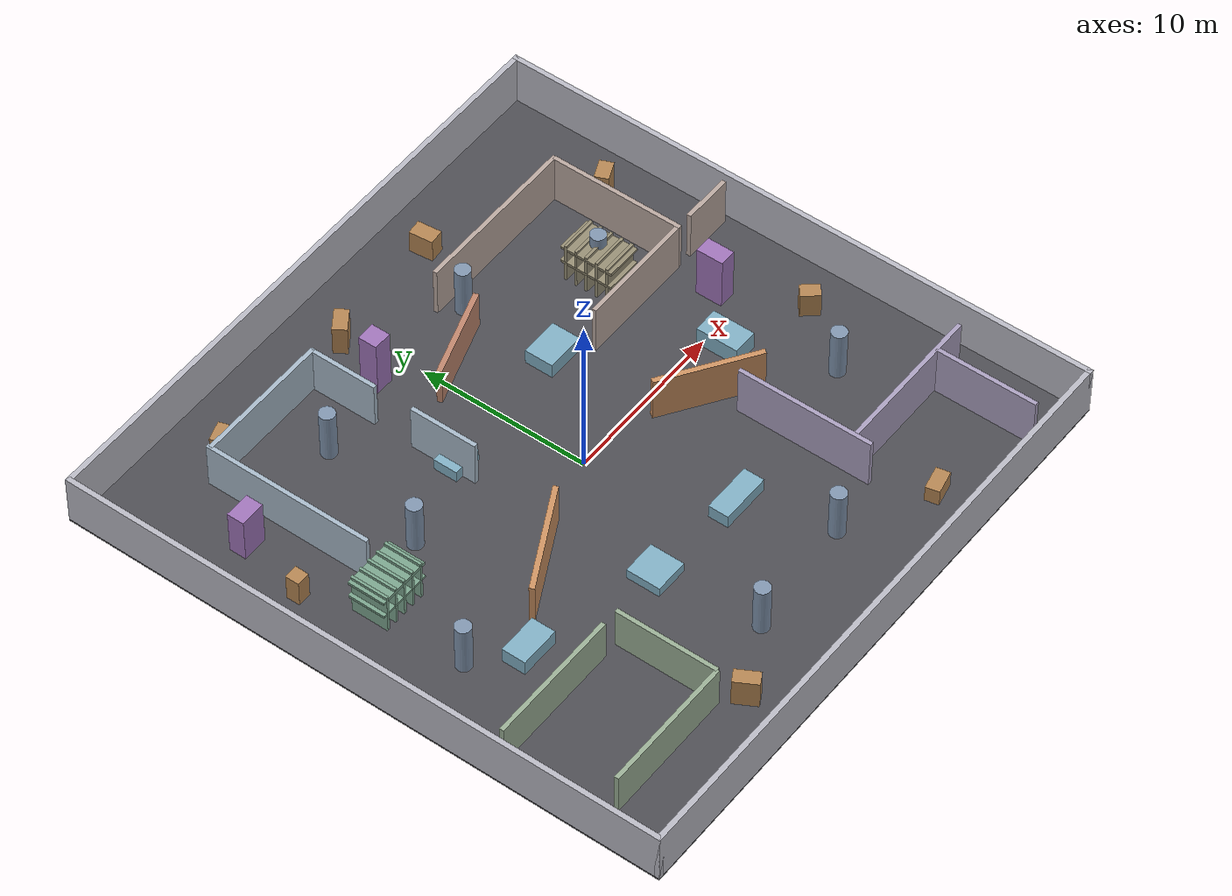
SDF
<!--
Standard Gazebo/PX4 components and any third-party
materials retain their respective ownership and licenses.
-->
<?xml version="1.0" ?>
<sdf version="1.10">
  <world name="m10_large_world">

    <physics type="ode">
      <max_step_size>0.0040000000000000001</max_step_size>
      <real_time_factor>1</real_time_factor>
      <real_time_update_rate>250</real_time_update_rate>
    </physics>
    <gravity>0 0 -9.8000000000000007</gravity>
    <magnetic_field>6.0000000000000002e-06 2.3e-05 -4.1999999999999998e-05</magnetic_field>
    <atmosphere type="adiabatic" />

    <scene>
      <grid>false</grid>
      <ambient>0.400000006 0.400000006 0.400000006 1</ambient>
      <background>0.699999988 0.699999988 0.699999988 1</background>
      <shadows>true</shadows>
    </scene>

    <spherical_coordinates>
      <surface_model>EARTH_WGS84</surface_model>
      <world_frame_orientation>ENU</world_frame_orientation>
      <latitude_deg>47.397971057728974</latitude_deg>
      <longitude_deg>8.5461637398001464</longitude_deg>
      <elevation>0</elevation>
      <heading_deg>0</heading_deg>
    </spherical_coordinates>

    <light name="sun" type="directional">
      <pose>0 0 20 0 0 0</pose>
      <cast_shadows>true</cast_shadows>
      <intensity>1.0</intensity>
      <direction>-0.5 0.3 -1</direction>
      <diffuse>0.9 0.9 0.9 1</diffuse>
      <specular>0.2 0.2 0.2 1</specular>
    </light>

    <model name="floor">
      <static>true</static>
      <pose>0 0 -0.05 0 0 0.0</pose>
      <link name="link">
        <collision name="collision">
          <geometry>
            <box>
              <size>36 36 0.1</size>
            </box>
          </geometry>
        </collision>

        <visual name="visual">
          <geometry>
            <box>
              <size>36 36 0.1</size>
            </box>
          </geometry>
          <material>
            <ambient>0.3 0.3 0.32 1.0</ambient>
            <diffuse>0.3 0.3 0.32 1.0</diffuse>
          </material>
        </visual>
      </link>
    </model>

    <model name="wall_north">
      <static>true</static>
      <pose>0 17.85 1.5 0 0 0.0</pose>
      <link name="link">
        <collision name="collision">
          <geometry>
            <box>
              <size>36 0.3 3.0</size>
            </box>
          </geometry>
        </collision>

        <visual name="visual">
          <geometry>
            <box>
              <size>36 0.3 3.0</size>
            </box>
          </geometry>
          <material>
            <ambient>0.72 0.72 0.76 1.0</ambient>
            <diffuse>0.72 0.72 0.76 1.0</diffuse>
          </material>
        </visual>
      </link>
    </model>

    <model name="wall_south">
      <static>true</static>
      <pose>0 -17.85 1.5 0 0 0.0</pose>
      <link name="link">
        <collision name="collision">
          <geometry>
            <box>
              <size>36 0.3 3.0</size>
            </box>
          </geometry>
        </collision>

        <visual name="visual">
          <geometry>
            <box>
              <size>36 0.3 3.0</size>
            </box>
          </geometry>
          <material>
            <ambient>0.72 0.72 0.76 1.0</ambient>
            <diffuse>0.72 0.72 0.76 1.0</diffuse>
          </material>
        </visual>
      </link>
    </model>

    <model name="wall_east">
      <static>true</static>
      <pose>17.85 0 1.5 0 0 0.0</pose>
      <link name="link">
        <collision name="collision">
          <geometry>
            <box>
              <size>0.3 36 3.0</size>
            </box>
          </geometry>
        </collision>

        <visual name="visual">
          <geometry>
            <box>
              <size>0.3 36 3.0</size>
            </box>
          </geometry>
          <material>
            <ambient>0.72 0.72 0.76 1.0</ambient>
            <diffuse>0.72 0.72 0.76 1.0</diffuse>
          </material>
        </visual>
      </link>
    </model>

    <model name="wall_west">
      <static>true</static>
      <pose>-17.85 0 1.5 0 0 0.0</pose>
      <link name="link">
        <collision name="collision">
          <geometry>
            <box>
              <size>0.3 36 3.0</size>
            </box>
          </geometry>
        </collision>

        <visual name="visual">
          <geometry>
            <box>
              <size>0.3 36 3.0</size>
            </box>
          </geometry>
          <material>
            <ambient>0.72 0.72 0.76 1.0</ambient>
            <diffuse>0.72 0.72 0.76 1.0</diffuse>
          </material>
        </visual>
      </link>
    </model>

    <model name="nw_room_w1">
      <static>true</static>
      <pose>-12.0 9.0 1.4 0 0 0.0</pose>
      <link name="link">
        <collision name="collision">
          <geometry>
            <box>
              <size>0.25 10.0 2.8</size>
            </box>
          </geometry>
        </collision>

        <visual name="visual">
          <geometry>
            <box>
              <size>0.25 10.0 2.8</size>
            </box>
          </geometry>
          <material>
            <ambient>0.65 0.72 0.78 1.0</ambient>
            <diffuse>0.65 0.72 0.78 1.0</diffuse>
          </material>
        </visual>
      </link>
    </model>

    <model name="nw_room_w2">
      <static>true</static>
      <pose>-8.0 13.8 1.4 0 0 0.0</pose>
      <link name="link">
        <collision name="collision">
          <geometry>
            <box>
              <size>8.0 0.25 2.8</size>
            </box>
          </geometry>
        </collision>

        <visual name="visual">
          <geometry>
            <box>
              <size>8.0 0.25 2.8</size>
            </box>
          </geometry>
          <material>
            <ambient>0.65 0.72 0.78 1.0</ambient>
            <diffuse>0.65 0.72 0.78 1.0</diffuse>
          </material>
        </visual>
      </link>
    </model>

    <model name="nw_room_w3a">
      <static>true</static>
      <pose>-4.1 11.8 1.4 0 0 0.0</pose>
      <link name="link">
        <collision name="collision">
          <geometry>
            <box>
              <size>0.25 4.0 2.8</size>
            </box>
          </geometry>
        </collision>

        <visual name="visual">
          <geometry>
            <box>
              <size>0.25 4.0 2.8</size>
            </box>
          </geometry>
          <material>
            <ambient>0.65 0.72 0.78 1.0</ambient>
            <diffuse>0.65 0.72 0.78 1.0</diffuse>
          </material>
        </visual>
      </link>
    </model>

    <model name="nw_room_w3b">
      <static>true</static>
      <pose>-4.1 5.5 1.4 0 0 0.0</pose>
      <link name="link">
        <collision name="collision">
          <geometry>
            <box>
              <size>0.25 4.0 2.8</size>
            </box>
          </geometry>
        </collision>

        <visual name="visual">
          <geometry>
            <box>
              <size>0.25 4.0 2.8</size>
            </box>
          </geometry>
          <material>
            <ambient>0.65 0.72 0.78 1.0</ambient>
            <diffuse>0.65 0.72 0.78 1.0</diffuse>
          </material>
        </visual>
      </link>
    </model>

    <model name="ne_wall_1">
      <static>true</static>
      <pose>8.5 12.0 1.5 0 0 0.0</pose>
      <link name="link">
        <collision name="collision">
          <geometry>
            <box>
              <size>10.0 0.25 3.0</size>
            </box>
          </geometry>
        </collision>

        <visual name="visual">
          <geometry>
            <box>
              <size>10.0 0.25 3.0</size>
            </box>
          </geometry>
          <material>
            <ambient>0.72 0.65 0.62 1.0</ambient>
            <diffuse>0.72 0.65 0.62 1.0</diffuse>
          </material>
        </visual>
      </link>
    </model>

    <model name="ne_wall_2">
      <static>true</static>
      <pose>13.4 8.0 1.5 0 0 0.0</pose>
      <link name="link">
        <collision name="collision">
          <geometry>
            <box>
              <size>0.25 8.0 3.0</size>
            </box>
          </geometry>
        </collision>

        <visual name="visual">
          <geometry>
            <box>
              <size>0.25 8.0 3.0</size>
            </box>
          </geometry>
          <material>
            <ambient>0.72 0.65 0.62 1.0</ambient>
            <diffuse>0.72 0.65 0.62 1.0</diffuse>
          </material>
        </visual>
      </link>
    </model>

    <model name="ne_wall_3a">
      <static>true</static>
      <pose>9.8 4.1 1.5 0 0 0.0</pose>
      <link name="link">
        <collision name="collision">
          <geometry>
            <box>
              <size>7.0 0.25 3.0</size>
            </box>
          </geometry>
        </collision>

        <visual name="visual">
          <geometry>
            <box>
              <size>7.0 0.25 3.0</size>
            </box>
          </geometry>
          <material>
            <ambient>0.72 0.65 0.62 1.0</ambient>
            <diffuse>0.72 0.65 0.62 1.0</diffuse>
          </material>
        </visual>
      </link>
    </model>

    <model name="ne_wall_3b">
      <static>true</static>
      <pose>15.8 4.1 1.5 0 0 0.0</pose>
      <link name="link">
        <collision name="collision">
          <geometry>
            <box>
              <size>3.0 0.25 3.0</size>
            </box>
          </geometry>
        </collision>

        <visual name="visual">
          <geometry>
            <box>
              <size>3.0 0.25 3.0</size>
            </box>
          </geometry>
          <material>
            <ambient>0.72 0.65 0.62 1.0</ambient>
            <diffuse>0.72 0.65 0.62 1.0</diffuse>
          </material>
        </visual>
      </link>
    </model>

    <model name="sw_corridor_1">
      <static>true</static>
      <pose>-13.0 -8.0 1.25 0 0 0.0</pose>
      <link name="link">
        <collision name="collision">
          <geometry>
            <box>
              <size>8.0 0.25 2.5</size>
            </box>
          </geometry>
        </collision>

        <visual name="visual">
          <geometry>
            <box>
              <size>8.0 0.25 2.5</size>
            </box>
          </geometry>
          <material>
            <ambient>0.6 0.68 0.58 1.0</ambient>
            <diffuse>0.6 0.68 0.58 1.0</diffuse>
          </material>
        </visual>
      </link>
    </model>

    <model name="sw_corridor_2">
      <static>true</static>
      <pose>-8.0 -11.0 1.25 0 0 0.0</pose>
      <link name="link">
        <collision name="collision">
          <geometry>
            <box>
              <size>0.25 6.0 2.5</size>
            </box>
          </geometry>
        </collision>

        <visual name="visual">
          <geometry>
            <box>
              <size>0.25 6.0 2.5</size>
            </box>
          </geometry>
          <material>
            <ambient>0.6 0.68 0.58 1.0</ambient>
            <diffuse>0.6 0.68 0.58 1.0</diffuse>
          </material>
        </visual>
      </link>
    </model>

    <model name="sw_corridor_3">
      <static>true</static>
      <pose>-12.0 -14.0 1.25 0 0 0.0</pose>
      <link name="link">
        <collision name="collision">
          <geometry>
            <box>
              <size>8.0 0.25 2.5</size>
            </box>
          </geometry>
        </collision>

        <visual name="visual">
          <geometry>
            <box>
              <size>8.0 0.25 2.5</size>
            </box>
          </geometry>
          <material>
            <ambient>0.6 0.68 0.58 1.0</ambient>
            <diffuse>0.6 0.68 0.58 1.0</diffuse>
          </material>
        </visual>
      </link>
    </model>

    <model name="se_corridor_1">
      <static>true</static>
      <pose>7.5 -8.0 1.5 0 0 0.0</pose>
      <link name="link">
        <collision name="collision">
          <geometry>
            <box>
              <size>0.25 8.0 3.0</size>
            </box>
          </geometry>
        </collision>

        <visual name="visual">
          <geometry>
            <box>
              <size>0.25 8.0 3.0</size>
            </box>
          </geometry>
          <material>
            <ambient>0.66 0.62 0.74 1.0</ambient>
            <diffuse>0.66 0.62 0.74 1.0</diffuse>
          </material>
        </visual>
      </link>
    </model>

    <model name="se_corridor_2">
      <static>true</static>
      <pose>12.0 -11.0 1.5 0 0 0.0</pose>
      <link name="link">
        <collision name="collision">
          <geometry>
            <box>
              <size>9.0 0.25 3.0</size>
            </box>
          </geometry>
        </collision>

        <visual name="visual">
          <geometry>
            <box>
              <size>9.0 0.25 3.0</size>
            </box>
          </geometry>
          <material>
            <ambient>0.66 0.62 0.74 1.0</ambient>
            <diffuse>0.66 0.62 0.74 1.0</diffuse>
          </material>
        </visual>
      </link>
    </model>

    <model name="se_corridor_3">
      <static>true</static>
      <pose>14.5 -14.0 1.5 0 0 0.0</pose>
      <link name="link">
        <collision name="collision">
          <geometry>
            <box>
              <size>0.25 6.0 3.0</size>
            </box>
          </geometry>
        </collision>

        <visual name="visual">
          <geometry>
            <box>
              <size>0.25 6.0 3.0</size>
            </box>
          </geometry>
          <material>
            <ambient>0.66 0.62 0.74 1.0</ambient>
            <diffuse>0.66 0.62 0.74 1.0</diffuse>
          </material>
        </visual>
      </link>
    </model>

    <model name="angled_wall_west">
      <static>true</static>
      <pose>-6.5 -2.5 1.25 0 0 0.47123889803846897</pose>
      <link name="link">
        <collision name="collision">
          <geometry>
            <box>
              <size>6.5 0.3 2.5</size>
            </box>
          </geometry>
        </collision>

        <visual name="visual">
          <geometry>
            <box>
              <size>6.5 0.3 2.5</size>
            </box>
          </geometry>
          <material>
            <ambient>0.8 0.57 0.38 1.0</ambient>
            <diffuse>0.8 0.57 0.38 1.0</diffuse>
          </material>
        </visual>
      </link>
    </model>

    <model name="angled_wall_east">
      <static>true</static>
      <pose>7.0 -2.5 1.35 0 0 -0.5934119456780721</pose>
      <link name="link">
        <collision name="collision">
          <geometry>
            <box>
              <size>6.0 0.3 2.7</size>
            </box>
          </geometry>
        </collision>

        <visual name="visual">
          <geometry>
            <box>
              <size>6.0 0.3 2.7</size>
            </box>
          </geometry>
          <material>
            <ambient>0.8 0.57 0.38 1.0</ambient>
            <diffuse>0.8 0.57 0.38 1.0</diffuse>
          </material>
        </visual>
      </link>
    </model>

    <model name="angled_wall_north">
      <static>true</static>
      <pose>1.5 9.0 1.15 0 0 0.3141592653589793</pose>
      <link name="link">
        <collision name="collision">
          <geometry>
            <box>
              <size>5.5 0.3 2.3</size>
            </box>
          </geometry>
        </collision>

        <visual name="visual">
          <geometry>
            <box>
              <size>5.5 0.3 2.3</size>
            </box>
          </geometry>
          <material>
            <ambient>0.74 0.52 0.42 1.0</ambient>
            <diffuse>0.74 0.52 0.42 1.0</diffuse>
          </material>
        </visual>
      </link>
    </model>

    <model name="pillar_0">
      <static>true</static>
      <pose>-13.5 -3.0 1.5 0 0 0</pose>
      <link name="link">
        <collision name="collision">
          <geometry>
            <cylinder>
              <radius>0.45</radius>
              <length>3.0</length>
            </cylinder>
          </geometry>
        </collision>

        <visual name="visual">
          <geometry>
            <cylinder>
              <radius>0.45</radius>
              <length>3.0</length>
            </cylinder>
          </geometry>
          <material>
            <ambient>0.5 0.58 0.68 1.0</ambient>
            <diffuse>0.5 0.58 0.68 1.0</diffuse>
          </material>
        </visual>
      </link>
    </model>

    <model name="pillar_1">
      <static>true</static>
      <pose>-9.0 3.5 1.5 0 0 0</pose>
      <link name="link">
        <collision name="collision">
          <geometry>
            <cylinder>
              <radius>0.45</radius>
              <length>3.0</length>
            </cylinder>
          </geometry>
        </collision>

        <visual name="visual">
          <geometry>
            <cylinder>
              <radius>0.45</radius>
              <length>3.0</length>
            </cylinder>
          </geometry>
          <material>
            <ambient>0.5 0.58 0.68 1.0</ambient>
            <diffuse>0.5 0.58 0.68 1.0</diffuse>
          </material>
        </visual>
      </link>
    </model>

    <model name="pillar_2">
      <static>true</static>
      <pose>-7.0 10.5 1.5 0 0 0</pose>
      <link name="link">
        <collision name="collision">
          <geometry>
            <cylinder>
              <radius>0.45</radius>
              <length>3.0</length>
            </cylinder>
          </geometry>
        </collision>

        <visual name="visual">
          <geometry>
            <cylinder>
              <radius>0.45</radius>
              <length>3.0</length>
            </cylinder>
          </geometry>
          <material>
            <ambient>0.5 0.58 0.68 1.0</ambient>
            <diffuse>0.5 0.58 0.68 1.0</diffuse>
          </material>
        </visual>
      </link>
    </model>

    <model name="pillar_3">
      <static>true</static>
      <pose>4.5 11.0 1.5 0 0 0</pose>
      <link name="link">
        <collision name="collision">
          <geometry>
            <cylinder>
              <radius>0.45</radius>
              <length>3.0</length>
            </cylinder>
          </geometry>
        </collision>

        <visual name="visual">
          <geometry>
            <cylinder>
              <radius>0.45</radius>
              <length>3.0</length>
            </cylinder>
          </geometry>
          <material>
            <ambient>0.5 0.58 0.68 1.0</ambient>
            <diffuse>0.5 0.58 0.68 1.0</diffuse>
          </material>
        </visual>
      </link>
    </model>

    <model name="pillar_4">
      <static>true</static>
      <pose>10.5 7.0 1.5 0 0 0</pose>
      <link name="link">
        <collision name="collision">
          <geometry>
            <cylinder>
              <radius>0.45</radius>
              <length>3.0</length>
            </cylinder>
          </geometry>
        </collision>

        <visual name="visual">
          <geometry>
            <cylinder>
              <radius>0.45</radius>
              <length>3.0</length>
            </cylinder>
          </geometry>
          <material>
            <ambient>0.5 0.58 0.68 1.0</ambient>
            <diffuse>0.5 0.58 0.68 1.0</diffuse>
          </material>
        </visual>
      </link>
    </model>

    <model name="pillar_5">
      <static>true</static>
      <pose>12.5 -6.5 1.5 0 0 0</pose>
      <link name="link">
        <collision name="collision">
          <geometry>
            <cylinder>
              <radius>0.45</radius>
              <length>3.0</length>
            </cylinder>
          </geometry>
        </collision>

        <visual name="visual">
          <geometry>
            <cylinder>
              <radius>0.45</radius>
              <length>3.0</length>
            </cylinder>
          </geometry>
          <material>
            <ambient>0.5 0.58 0.68 1.0</ambient>
            <diffuse>0.5 0.58 0.68 1.0</diffuse>
          </material>
        </visual>
      </link>
    </model>

    <model name="pillar_6">
      <static>true</static>
      <pose>4.0 -12.5 1.5 0 0 0</pose>
      <link name="link">
        <collision name="collision">
          <geometry>
            <cylinder>
              <radius>0.45</radius>
              <length>3.0</length>
            </cylinder>
          </geometry>
        </collision>

        <visual name="visual">
          <geometry>
            <cylinder>
              <radius>0.45</radius>
              <length>3.0</length>
            </cylinder>
          </geometry>
          <material>
            <ambient>0.5 0.58 0.68 1.0</ambient>
            <diffuse>0.5 0.58 0.68 1.0</diffuse>
          </material>
        </visual>
      </link>
    </model>

    <model name="pillar_7">
      <static>true</static>
      <pose>-3.0 -13.0 1.5 0 0 0</pose>
      <link name="link">
        <collision name="collision">
          <geometry>
            <cylinder>
              <radius>0.45</radius>
              <length>3.0</length>
            </cylinder>
          </geometry>
        </collision>

        <visual name="visual">
          <geometry>
            <cylinder>
              <radius>0.45</radius>
              <length>3.0</length>
            </cylinder>
          </geometry>
          <material>
            <ambient>0.5 0.58 0.68 1.0</ambient>
            <diffuse>0.5 0.58 0.68 1.0</diffuse>
          </material>
        </visual>
      </link>
    </model>

    <model name="west_shelf_post_0">
      <static>true</static>
      <pose>-14.0 2.3 1.25 0 0 0.0</pose>
      <link name="link">
        <collision name="collision">
          <geometry>
            <box>
              <size>0.16 2.2 2.5</size>
            </box>
          </geometry>
        </collision>

        <visual name="visual">
          <geometry>
            <box>
              <size>0.16 2.2 2.5</size>
            </box>
          </geometry>
          <material>
            <ambient>0.48 0.64 0.55 1.0</ambient>
            <diffuse>0.48 0.64 0.55 1.0</diffuse>
          </material>
        </visual>
      </link>
    </model>

    <model name="west_shelf_post_1">
      <static>true</static>
      <pose>-13.35 2.3 1.25 0 0 0.0</pose>
      <link name="link">
        <collision name="collision">
          <geometry>
            <box>
              <size>0.16 2.2 2.5</size>
            </box>
          </geometry>
        </collision>

        <visual name="visual">
          <geometry>
            <box>
              <size>0.16 2.2 2.5</size>
            </box>
          </geometry>
          <material>
            <ambient>0.48 0.64 0.55 1.0</ambient>
            <diffuse>0.48 0.64 0.55 1.0</diffuse>
          </material>
        </visual>
      </link>
    </model>

    <model name="west_shelf_post_2">
      <static>true</static>
      <pose>-12.7 2.3 1.25 0 0 0.0</pose>
      <link name="link">
        <collision name="collision">
          <geometry>
            <box>
              <size>0.16 2.2 2.5</size>
            </box>
          </geometry>
        </collision>

        <visual name="visual">
          <geometry>
            <box>
              <size>0.16 2.2 2.5</size>
            </box>
          </geometry>
          <material>
            <ambient>0.48 0.64 0.55 1.0</ambient>
            <diffuse>0.48 0.64 0.55 1.0</diffuse>
          </material>
        </visual>
      </link>
    </model>

    <model name="west_shelf_post_3">
      <static>true</static>
      <pose>-12.05 2.3 1.25 0 0 0.0</pose>
      <link name="link">
        <collision name="collision">
          <geometry>
            <box>
              <size>0.16 2.2 2.5</size>
            </box>
          </geometry>
        </collision>

        <visual name="visual">
          <geometry>
            <box>
              <size>0.16 2.2 2.5</size>
            </box>
          </geometry>
          <material>
            <ambient>0.48 0.64 0.55 1.0</ambient>
            <diffuse>0.48 0.64 0.55 1.0</diffuse>
          </material>
        </visual>
      </link>
    </model>

    <model name="west_shelf_post_4">
      <static>true</static>
      <pose>-11.4 2.3 1.25 0 0 0.0</pose>
      <link name="link">
        <collision name="collision">
          <geometry>
            <box>
              <size>0.16 2.2 2.5</size>
            </box>
          </geometry>
        </collision>

        <visual name="visual">
          <geometry>
            <box>
              <size>0.16 2.2 2.5</size>
            </box>
          </geometry>
          <material>
            <ambient>0.48 0.64 0.55 1.0</ambient>
            <diffuse>0.48 0.64 0.55 1.0</diffuse>
          </material>
        </visual>
      </link>
    </model>

    <model name="west_shelf_top">
      <static>true</static>
      <pose>-12.7 2.3 2.25 0 0 0.0</pose>
      <link name="link">
        <collision name="collision">
          <geometry>
            <box>
              <size>3.2 2.2 0.15</size>
            </box>
          </geometry>
        </collision>

        <visual name="visual">
          <geometry>
            <box>
              <size>3.2 2.2 0.15</size>
            </box>
          </geometry>
          <material>
            <ambient>0.48 0.64 0.55 1.0</ambient>
            <diffuse>0.48 0.64 0.55 1.0</diffuse>
          </material>
        </visual>
      </link>
    </model>

    <model name="west_shelf_mid">
      <static>true</static>
      <pose>-12.7 2.3 1.25 0 0 0.0</pose>
      <link name="link">
        <collision name="collision">
          <geometry>
            <box>
              <size>3.2 2.2 0.15</size>
            </box>
          </geometry>
        </collision>

        <visual name="visual">
          <geometry>
            <box>
              <size>3.2 2.2 0.15</size>
            </box>
          </geometry>
          <material>
            <ambient>0.48 0.64 0.55 1.0</ambient>
            <diffuse>0.48 0.64 0.55 1.0</diffuse>
          </material>
        </visual>
      </link>
    </model>

    <model name="east_shelf_post_0">
      <static>true</static>
      <pose>10.3 5.5 1.25 0 0 0.0</pose>
      <link name="link">
        <collision name="collision">
          <geometry>
            <box>
              <size>2.2 0.16 2.5</size>
            </box>
          </geometry>
        </collision>

        <visual name="visual">
          <geometry>
            <box>
              <size>2.2 0.16 2.5</size>
            </box>
          </geometry>
          <material>
            <ambient>0.58 0.55 0.45 1.0</ambient>
            <diffuse>0.58 0.55 0.45 1.0</diffuse>
          </material>
        </visual>
      </link>
    </model>

    <model name="east_shelf_post_1">
      <static>true</static>
      <pose>10.3 6.15 1.25 0 0 0.0</pose>
      <link name="link">
        <collision name="collision">
          <geometry>
            <box>
              <size>2.2 0.16 2.5</size>
            </box>
          </geometry>
        </collision>

        <visual name="visual">
          <geometry>
            <box>
              <size>2.2 0.16 2.5</size>
            </box>
          </geometry>
          <material>
            <ambient>0.58 0.55 0.45 1.0</ambient>
            <diffuse>0.58 0.55 0.45 1.0</diffuse>
          </material>
        </visual>
      </link>
    </model>

    <model name="east_shelf_post_2">
      <static>true</static>
      <pose>10.3 6.8 1.25 0 0 0.0</pose>
      <link name="link">
        <collision name="collision">
          <geometry>
            <box>
              <size>2.2 0.16 2.5</size>
            </box>
          </geometry>
        </collision>

        <visual name="visual">
          <geometry>
            <box>
              <size>2.2 0.16 2.5</size>
            </box>
          </geometry>
          <material>
            <ambient>0.58 0.55 0.45 1.0</ambient>
            <diffuse>0.58 0.55 0.45 1.0</diffuse>
          </material>
        </visual>
      </link>
    </model>

    <model name="east_shelf_post_3">
      <static>true</static>
      <pose>10.3 7.45 1.25 0 0 0.0</pose>
      <link name="link">
        <collision name="collision">
          <geometry>
            <box>
              <size>2.2 0.16 2.5</size>
            </box>
          </geometry>
        </collision>

        <visual name="visual">
          <geometry>
            <box>
              <size>2.2 0.16 2.5</size>
            </box>
          </geometry>
          <material>
            <ambient>0.58 0.55 0.45 1.0</ambient>
            <diffuse>0.58 0.55 0.45 1.0</diffuse>
          </material>
        </visual>
      </link>
    </model>

    <model name="east_shelf_post_4">
      <static>true</static>
      <pose>10.3 8.1 1.25 0 0 0.0</pose>
      <link name="link">
        <collision name="collision">
          <geometry>
            <box>
              <size>2.2 0.16 2.5</size>
            </box>
          </geometry>
        </collision>

        <visual name="visual">
          <geometry>
            <box>
              <size>2.2 0.16 2.5</size>
            </box>
          </geometry>
          <material>
            <ambient>0.58 0.55 0.45 1.0</ambient>
            <diffuse>0.58 0.55 0.45 1.0</diffuse>
          </material>
        </visual>
      </link>
    </model>

    <model name="east_shelf_top">
      <static>true</static>
      <pose>10.3 6.8 2.25 0 0 0.0</pose>
      <link name="link">
        <collision name="collision">
          <geometry>
            <box>
              <size>2.2 3.2 0.15</size>
            </box>
          </geometry>
        </collision>

        <visual name="visual">
          <geometry>
            <box>
              <size>2.2 3.2 0.15</size>
            </box>
          </geometry>
          <material>
            <ambient>0.58 0.55 0.45 1.0</ambient>
            <diffuse>0.58 0.55 0.45 1.0</diffuse>
          </material>
        </visual>
      </link>
    </model>

    <model name="east_shelf_mid">
      <static>true</static>
      <pose>10.3 6.8 1.25 0 0 0.0</pose>
      <link name="link">
        <collision name="collision">
          <geometry>
            <box>
              <size>2.2 3.2 0.15</size>
            </box>
          </geometry>
        </collision>

        <visual name="visual">
          <geometry>
            <box>
              <size>2.2 3.2 0.15</size>
            </box>
          </geometry>
          <material>
            <ambient>0.58 0.55 0.45 1.0</ambient>
            <diffuse>0.58 0.55 0.45 1.0</diffuse>
          </material>
        </visual>
      </link>
    </model>

    <model name="low_1">
      <static>true</static>
      <pose>-3.8 5.0 0.35 0 0 0.0</pose>
      <link name="link">
        <collision name="collision">
          <geometry>
            <box>
              <size>1.8 1.4 0.7</size>
            </box>
          </geometry>
        </collision>

        <visual name="visual">
          <geometry>
            <box>
              <size>1.8 1.4 0.7</size>
            </box>
          </geometry>
          <material>
            <ambient>0.5 0.68 0.76 1.0</ambient>
            <diffuse>0.5 0.68 0.76 1.0</diffuse>
          </material>
        </visual>
      </link>
    </model>

    <model name="low_2">
      <static>true</static>
      <pose>4.7 5.5 0.45 0 0 0.0</pose>
      <link name="link">
        <collision name="collision">
          <geometry>
            <box>
              <size>2.3 1.7 0.9</size>
            </box>
          </geometry>
        </collision>

        <visual name="visual">
          <geometry>
            <box>
              <size>2.3 1.7 0.9</size>
            </box>
          </geometry>
          <material>
            <ambient>0.5 0.68 0.76 1.0</ambient>
            <diffuse>0.5 0.68 0.76 1.0</diffuse>
          </material>
        </visual>
      </link>
    </model>

    <model name="low_3">
      <static>true</static>
      <pose>-3.5 -7.0 0.3 0 0 0.0</pose>
      <link name="link">
        <collision name="collision">
          <geometry>
            <box>
              <size>2.0 2.0 0.6</size>
            </box>
          </geometry>
        </collision>

        <visual name="visual">
          <geometry>
            <box>
              <size>2.0 2.0 0.6</size>
            </box>
          </geometry>
          <material>
            <ambient>0.5 0.68 0.76 1.0</ambient>
            <diffuse>0.5 0.68 0.76 1.0</diffuse>
          </material>
        </visual>
      </link>
    </model>

    <model name="low_4">
      <static>true</static>
      <pose>2.5 -7.5 0.4 0 0 0.0</pose>
      <link name="link">
        <collision name="collision">
          <geometry>
            <box>
              <size>3.0 1.2 0.8</size>
            </box>
          </geometry>
        </collision>

        <visual name="visual">
          <geometry>
            <box>
              <size>3.0 1.2 0.8</size>
            </box>
          </geometry>
          <material>
            <ambient>0.5 0.68 0.76 1.0</ambient>
            <diffuse>0.5 0.68 0.76 1.0</diffuse>
          </material>
        </visual>
      </link>
    </model>

    <model name="low_5">
      <static>true</static>
      <pose>10.5 -1.0 0.55 0 0 0.0</pose>
      <link name="link">
        <collision name="collision">
          <geometry>
            <box>
              <size>1.5 2.5 1.1</size>
            </box>
          </geometry>
        </collision>

        <visual name="visual">
          <geometry>
            <box>
              <size>1.5 2.5 1.1</size>
            </box>
          </geometry>
          <material>
            <ambient>0.5 0.68 0.76 1.0</ambient>
            <diffuse>0.5 0.68 0.76 1.0</diffuse>
          </material>
        </visual>
      </link>
    </model>

    <model name="low_6">
      <static>true</static>
      <pose>-11.0 -5.0 0.45 0 0 0.0</pose>
      <link name="link">
        <collision name="collision">
          <geometry>
            <box>
              <size>2.4 1.4 0.9</size>
            </box>
          </geometry>
        </collision>

        <visual name="visual">
          <geometry>
            <box>
              <size>2.4 1.4 0.9</size>
            </box>
          </geometry>
          <material>
            <ambient>0.5 0.68 0.76 1.0</ambient>
            <diffuse>0.5 0.68 0.76 1.0</diffuse>
          </material>
        </visual>
      </link>
    </model>

    <model name="tower_1">
      <static>true</static>
      <pose>-2.0 11.5 1.75 0 0 0.0</pose>
      <link name="link">
        <collision name="collision">
          <geometry>
            <box>
              <size>1.1 1.1 3.5</size>
            </box>
          </geometry>
        </collision>

        <visual name="visual">
          <geometry>
            <box>
              <size>1.1 1.1 3.5</size>
            </box>
          </geometry>
          <material>
            <ambient>0.62 0.45 0.72 1.0</ambient>
            <diffuse>0.62 0.45 0.72 1.0</diffuse>
          </material>
        </visual>
      </link>
    </model>

    <model name="tower_2">
      <static>true</static>
      <pose>13.0 1.5 1.6 0 0 0.0</pose>
      <link name="link">
        <collision name="collision">
          <geometry>
            <box>
              <size>1.0 1.6 3.2</size>
            </box>
          </geometry>
        </collision>

        <visual name="visual">
          <geometry>
            <box>
              <size>1.0 1.6 3.2</size>
            </box>
          </geometry>
          <material>
            <ambient>0.62 0.45 0.72 1.0</ambient>
            <diffuse>0.62 0.45 0.72 1.0</diffuse>
          </material>
        </visual>
      </link>
    </model>

    <model name="tower_3">
      <static>true</static>
      <pose>-14.0 10.0 1.35 0 0 0.0</pose>
      <link name="link">
        <collision name="collision">
          <geometry>
            <box>
              <size>1.5 1.0 2.7</size>
            </box>
          </geometry>
        </collision>

        <visual name="visual">
          <geometry>
            <box>
              <size>1.5 1.0 2.7</size>
            </box>
          </geometry>
          <material>
            <ambient>0.62 0.45 0.72 1.0</ambient>
            <diffuse>0.62 0.45 0.72 1.0</diffuse>
          </material>
        </visual>
      </link>
    </model>

    <model name="feature_0">
      <static>true</static>
      <pose>-15.0 6.0 0.8 0 0 0.0</pose>
      <link name="link">
        <collision name="collision">
          <geometry>
            <box>
              <size>0.8 0.8 1.6</size>
            </box>
          </geometry>
        </collision>

        <visual name="visual">
          <geometry>
            <box>
              <size>0.8 0.8 1.6</size>
            </box>
          </geometry>
          <material>
            <ambient>0.7 0.52 0.32 1.0</ambient>
            <diffuse>0.7 0.52 0.32 1.0</diffuse>
          </material>
        </visual>
      </link>
    </model>

    <model name="feature_1">
      <static>true</static>
      <pose>-10.0 15.0 0.6 0 0 0.29670597283903605</pose>
      <link name="link">
        <collision name="collision">
          <geometry>
            <box>
              <size>1.2 0.6 1.2</size>
            </box>
          </geometry>
        </collision>

        <visual name="visual">
          <geometry>
            <box>
              <size>1.2 0.6 1.2</size>
            </box>
          </geometry>
          <material>
            <ambient>0.7 0.52 0.32 1.0</ambient>
            <diffuse>0.7 0.52 0.32 1.0</diffuse>
          </material>
        </visual>
      </link>
    </model>

    <model name="feature_2">
      <static>true</static>
      <pose>-1.0 14.5 0.9 0 0 0.5934119456780721</pose>
      <link name="link">
        <collision name="collision">
          <geometry>
            <box>
              <size>1.4 0.8 1.8</size>
            </box>
          </geometry>
        </collision>

        <visual name="visual">
          <geometry>
            <box>
              <size>1.4 0.8 1.8</size>
            </box>
          </geometry>
          <material>
            <ambient>0.7 0.52 0.32 1.0</ambient>
            <diffuse>0.7 0.52 0.32 1.0</diffuse>
          </material>
        </visual>
      </link>
    </model>

    <model name="feature_3">
      <static>true</static>
      <pose>6.5 15.0 0.7 0 0 0.10471975511965978</pose>
      <link name="link">
        <collision name="collision">
          <geometry>
            <box>
              <size>0.9 1.4 1.4</size>
            </box>
          </geometry>
        </collision>

        <visual name="visual">
          <geometry>
            <box>
              <size>0.9 1.4 1.4</size>
            </box>
          </geometry>
          <material>
            <ambient>0.7 0.52 0.32 1.0</ambient>
            <diffuse>0.7 0.52 0.32 1.0</diffuse>
          </material>
        </visual>
      </link>
    </model>

    <model name="feature_4">
      <static>true</static>
      <pose>15.0 10.0 1.0 0 0 0.4014257279586958</pose>
      <link name="link">
        <collision name="collision">
          <geometry>
            <box>
              <size>1.2 0.8 2.0</size>
            </box>
          </geometry>
        </collision>

        <visual name="visual">
          <geometry>
            <box>
              <size>1.2 0.8 2.0</size>
            </box>
          </geometry>
          <material>
            <ambient>0.7 0.52 0.32 1.0</ambient>
            <diffuse>0.7 0.52 0.32 1.0</diffuse>
          </material>
        </visual>
      </link>
    </model>

    <model name="feature_5">
      <static>true</static>
      <pose>15.0 -3.0 0.75 0 0 0.6981317007977318</pose>
      <link name="link">
        <collision name="collision">
          <geometry>
            <box>
              <size>0.8 1.1 1.5</size>
            </box>
          </geometry>
        </collision>

        <visual name="visual">
          <geometry>
            <box>
              <size>0.8 1.1 1.5</size>
            </box>
          </geometry>
          <material>
            <ambient>0.7 0.52 0.32 1.0</ambient>
            <diffuse>0.7 0.52 0.32 1.0</diffuse>
          </material>
        </visual>
      </link>
    </model>

    <model name="feature_6">
      <static>true</static>
      <pose>9.0 -15.0 0.5 0 0 0.20943951023931956</pose>
      <link name="link">
        <collision name="collision">
          <geometry>
            <box>
              <size>1.4 0.8 1.0</size>
            </box>
          </geometry>
        </collision>

        <visual name="visual">
          <geometry>
            <box>
              <size>1.4 0.8 1.0</size>
            </box>
          </geometry>
          <material>
            <ambient>0.7 0.52 0.32 1.0</ambient>
            <diffuse>0.7 0.52 0.32 1.0</diffuse>
          </material>
        </visual>
      </link>
    </model>

    <model name="feature_7">
      <static>true</static>
      <pose>-7.0 -15.0 0.85 0 0 0.5061454830783556</pose>
      <link name="link">
        <collision name="collision">
          <geometry>
            <box>
              <size>0.8 1.4 1.7</size>
            </box>
          </geometry>
        </collision>

        <visual name="visual">
          <geometry>
            <box>
              <size>0.8 1.4 1.7</size>
            </box>
          </geometry>
          <material>
            <ambient>0.7 0.52 0.32 1.0</ambient>
            <diffuse>0.7 0.52 0.32 1.0</diffuse>
          </material>
        </visual>
      </link>
    </model>

  </world>
</sdf>
